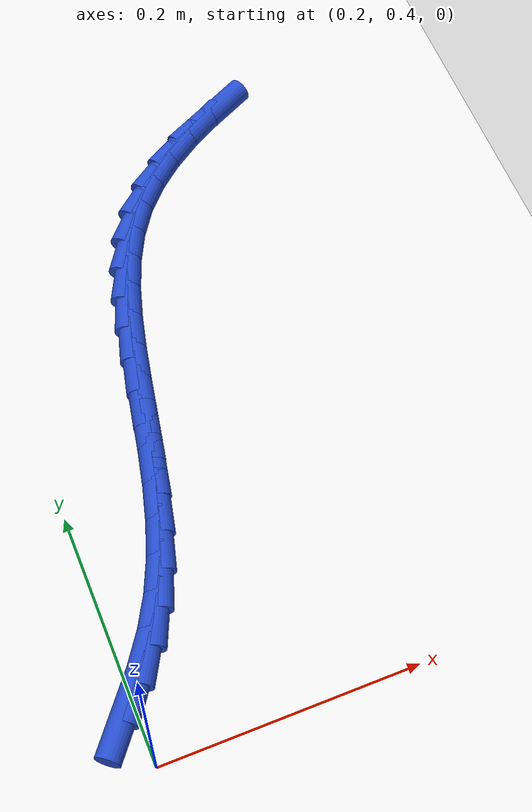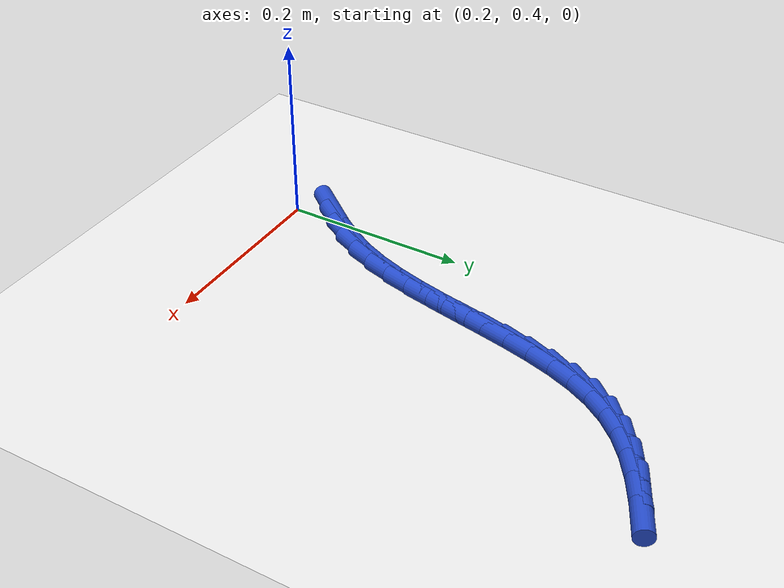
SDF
<sdf version="1.6">
 <world name="default">
  <model name="ground_plane">
   <static>1</static>
   <link name="link">
    <collision name="collision">
     <geometry><plane><normal>0 0 1</normal><size>100 100</size></plane></geometry>
     <surface><friction><ode><mu>100</mu><mu2>50</mu2></ode></friction></surface>
    </collision>
    <visual name="visual">
     <cast_shadows>0</cast_shadows>
     <geometry><plane><normal>0 0 1</normal><size>100 100</size></plane></geometry>
     <material>
      <script><uri>file://media/materials/scripts/gazebo.material</uri><name>Gazebo/WhiteGlow</name></script>
     </material>
    </visual>
   </link>
  </model>
  <model name="line">
   <link name="link_18">
    <pose>0.19471748654073373 0.4444977185446144 0.01 0 1.57 0.8899683148135948</pose>
    <collision name="collision">
     <geometry><cylinder><radius>0.01</radius><length>0.08</length></cylinder></geometry>
    </collision>
    <visual name="visual">
     <material>
      <script><name>Gazebo/Blue</name><uri>file://media/materials/scripts/gazebo.material</uri></script>
     </material>
     <geometry><cylinder><radius>0.01</radius><length>0.08</length></cylinder></geometry>
    </visual>
   </link>
   <link name="link_19">
    <pose>0.21266798793074382 0.4666579622095942 0.01 0 1.57 0.9612425770427995</pose>
    <collision name="collision">
     <geometry><cylinder><radius>0.01</radius><length>0.08</length></cylinder></geometry>
    </collision>
    <visual name="visual">
     <material>
      <script><name>Gazebo/Blue</name><uri>file://media/materials/scripts/gazebo.material</uri></script>
     </material>
     <geometry><cylinder><radius>0.01</radius><length>0.08</length></cylinder></geometry>
    </visual>
   </link>
   <link name="link_20">
    <pose>0.22889773751146542 0.4899012665894805 0.01 0 1.57 1.0513671834905756</pose>
    <collision name="collision">
     <geometry><cylinder><radius>0.01</radius><length>0.08</length></cylinder></geometry>
    </collision>
    <visual name="visual">
     <material>
      <script><name>Gazebo/Blue</name><uri>file://media/materials/scripts/gazebo.material</uri></script>
     </material>
     <geometry><cylinder><radius>0.01</radius><length>0.08</length></cylinder></geometry>
    </visual>
   </link>
   <link name="link_21">
    <pose>0.24295176729041829 0.5144796673006181 0.01 0 1.57 1.1522957327211576</pose>
    <collision name="collision">
     <geometry><cylinder><radius>0.01</radius><length>0.08</length></cylinder></geometry>
    </collision>
    <visual name="visual">
     <material>
      <script><name>Gazebo/Blue</name><uri>file://media/materials/scripts/gazebo.material</uri></script>
     </material>
     <geometry><cylinder><radius>0.01</radius><length>0.08</length></cylinder></geometry>
    </visual>
   </link>
   <link name="link_22">
    <pose>0.2545428161926947 0.5405401260811693 0.01 0 1.57 1.2371412166204445</pose>
    <collision name="collision">
     <geometry><cylinder><radius>0.01</radius><length>0.08</length></cylinder></geometry>
    </collision>
    <visual name="visual">
     <material>
      <script><name>Gazebo/Blue</name><uri>file://media/materials/scripts/gazebo.material</uri></script>
     </material>
     <geometry><cylinder><radius>0.01</radius><length>0.08</length></cylinder></geometry>
    </visual>
   </link>
   <link name="link_23">
    <pose>0.26400535680978926 0.5678400681583937 0.01 0 1.57 1.300593996096483</pose>
    <collision name="collision">
     <geometry><cylinder><radius>0.01</radius><length>0.08</length></cylinder></geometry>
    </collision>
    <visual name="visual">
     <material>
      <script><name>Gazebo/Blue</name><uri>file://media/materials/scripts/gazebo.material</uri></script>
     </material>
     <geometry><cylinder><radius>0.01</radius><length>0.08</length></cylinder></geometry>
    </visual>
   </link>
   <link name="link_24">
    <pose>0.2718179076857716 0.5960466692511083 0.01 0 1.57 1.344015931490667</pose>
    <collision name="collision">
     <geometry><cylinder><radius>0.01</radius><length>0.08</length></cylinder></geometry>
    </collision>
    <visual name="visual">
     <material>
      <script><name>Gazebo/Blue</name><uri>file://media/materials/scripts/gazebo.material</uri></script>
     </material>
     <geometry><cylinder><radius>0.01</radius><length>0.08</length></cylinder></geometry>
    </visual>
   </link>
   <link name="link_25">
    <pose>0.27845898736471114 0.6248271050781291 0.01 0 1.57 1.3686397083301012</pose>
    <collision name="collision">
     <geometry><cylinder><radius>0.01</radius><length>0.08</length></cylinder></geometry>
    </collision>
    <visual name="visual">
     <material>
      <script><name>Gazebo/Blue</name><uri>file://media/materials/scripts/gazebo.material</uri></script>
     </material>
     <geometry><cylinder><radius>0.01</radius><length>0.08</length></cylinder></geometry>
    </visual>
   </link>
   <link name="link_26">
    <pose>0.2844071143906777 0.6538485513582731 0.01 0 1.57 1.3751374631966333</pose>
    <collision name="collision">
     <geometry><cylinder><radius>0.01</radius><length>0.08</length></cylinder></geometry>
    </collision>
    <visual name="visual">
     <material>
      <script><name>Gazebo/Blue</name><uri>file://media/materials/scripts/gazebo.material</uri></script>
     </material>
     <geometry><cylinder><radius>0.01</radius><length>0.08</length></cylinder></geometry>
    </visual>
   </link>
   <link name="link_27">
    <pose>0.29014080730774056 0.6827781838103563 0.01 0 1.57 1.3634100883695495</pose>
    <collision name="collision">
     <geometry><cylinder><radius>0.01</radius><length>0.08</length></cylinder></geometry>
    </collision>
    <visual name="visual">
     <material>
      <script><name>Gazebo/Blue</name><uri>file://media/materials/scripts/gazebo.material</uri></script>
     </material>
     <geometry><cylinder><radius>0.01</radius><length>0.08</length></cylinder></geometry>
    </visual>
   </link>
   <link name="link_28">
    <pose>0.2961385846599696 0.7112831781531954 0.01 0 1.57 1.3324939191332077</pose>
    <collision name="collision">
     <geometry><cylinder><radius>0.01</radius><length>0.08</length></cylinder></geometry>
    </collision>
    <visual name="visual">
     <material>
      <script><name>Gazebo/Blue</name><uri>file://media/materials/scripts/gazebo.material</uri></script>
     </material>
     <geometry><cylinder><radius>0.01</radius><length>0.08</length></cylinder></geometry>
    </visual>
   </link>
   <link name="link_29">
    <pose>0.30287896499143424 0.7390307101056068 0.01 0 1.57 1.2805676561580188</pose>
    <collision name="collision">
     <geometry><cylinder><radius>0.01</radius><length>0.08</length></cylinder></geometry>
    </collision>
    <visual name="visual">
     <material>
      <script><name>Gazebo/Blue</name><uri>file://media/materials/scripts/gazebo.material</uri></script>
     </material>
     <geometry><cylinder><radius>0.01</radius><length>0.08</length></cylinder></geometry>
    </visual>
   </link>
   <link name="link_30">
    <pose>0.31084046684620414 0.7656879553864073 0.01 0 1.57 1.2051525236272433</pose>
    <collision name="collision">
     <geometry><cylinder><radius>0.01</radius><length>0.08</length></cylinder></geometry>
    </collision>
    <visual name="visual">
     <material>
      <script><name>Gazebo/Blue</name><uri>file://media/materials/scripts/gazebo.material</uri></script>
     </material>
     <geometry><cylinder><radius>0.01</radius><length>0.08</length></cylinder></geometry>
    </visual>
   </link>
   <link name="link_31">
    <pose>0.32050160876834877 0.7909220897144129 0.01 0 1.57 1.1037402848397018</pose>
    <collision name="collision">
     <geometry><cylinder><radius>0.01</radius><length>0.08</length></cylinder></geometry>
    </collision>
    <visual name="visual">
     <material>
      <script><name>Gazebo/Blue</name><uri>file://media/materials/scripts/gazebo.material</uri></script>
     </material>
     <geometry><cylinder><radius>0.01</radius><length>0.08</length></cylinder></geometry>
    </visual>
   </link>
   <link name="link_32">
    <pose>0.3323409093019378 0.8144002888084403 0.01 0 1.57 0.9751831111092903</pose>
    <collision name="collision">
     <geometry><cylinder><radius>0.01</radius><length>0.08</length></cylinder></geometry>
    </collision>
    <visual name="visual">
     <material>
      <script><name>Gazebo/Blue</name><uri>file://media/materials/scripts/gazebo.material</uri></script>
     </material>
     <geometry><cylinder><radius>0.01</radius><length>0.08</length></cylinder></geometry>
    </visual>
   </link>
   <link name="link_33">
    <pose>0.3468368795343951 0.8357897339492958 0.01 0 1.57 0.8297698026181637</pose>
    <collision name="collision">
     <geometry><cylinder><radius>0.01</radius><length>0.08</length></cylinder></geometry>
    </collision>
    <visual name="visual">
     <material>
      <script><name>Gazebo/Blue</name><uri>file://media/materials/scripts/gazebo.material</uri></script>
     </material>
     <geometry><cylinder><radius>0.01</radius><length>0.08</length></cylinder></geometry>
    </visual>
   </link>
   <link name="link_34">
    <pose>0.36430395980754077 0.8548799884916853 0.01 0 1.57 0.7009818236331115</pose>
    <collision name="collision">
     <geometry><cylinder><radius>0.01</radius><length>0.08</length></cylinder></geometry>
    </collision>
    <visual name="visual">
     <material>
      <script><name>Gazebo/Blue</name><uri>file://media/materials/scripts/gazebo.material</uri></script>
     </material>
     <geometry><cylinder><radius>0.01</radius><length>0.08</length></cylinder></geometry>
    </visual>
   </link>
   <link name="link_35">
    <pose>0.38446916699355965 0.8718987810598613 0.01 0 1.57 0.5972072402549462</pose>
    <collision name="collision">
     <geometry><cylinder><radius>0.01</radius><length>0.08</length></cylinder></geometry>
    </collision>
    <visual name="visual">
     <material>
      <script><name>Gazebo/Blue</name><uri>file://media/materials/scripts/gazebo.material</uri></script>
     </material>
     <geometry><cylinder><radius>0.01</radius><length>0.08</length></cylinder></geometry>
    </visual>
   </link>
   <link name="link_36">
    <pose>0.4069281044457462 0.8871718629872495 0.01 0 1.57 0.5172810501137337</pose>
    <collision name="collision">
     <geometry><cylinder><radius>0.01</radius><length>0.08</length></cylinder></geometry>
    </collision>
    <visual name="visual">
     <material>
      <script><name>Gazebo/Blue</name><uri>file://media/materials/scripts/gazebo.material</uri></script>
     </material>
     <geometry><cylinder><radius>0.01</radius><length>0.08</length></cylinder></geometry>
    </visual>
   </link>
   <link name="link_37">
    <pose>0.4312763755173954 0.9010249856072765 0.01 0 1.57 0.4587523879835254</pose>
    <collision name="collision">
     <geometry><cylinder><radius>0.01</radius><length>0.08</length></cylinder></geometry>
    </collision>
    <visual name="visual">
     <material>
      <script><name>Gazebo/Blue</name><uri>file://media/materials/scripts/gazebo.material</uri></script>
     </material>
     <geometry><cylinder><radius>0.01</radius><length>0.08</length></cylinder></geometry>
    </visual>
   </link>
  </model>
 </world>
</sdf>
